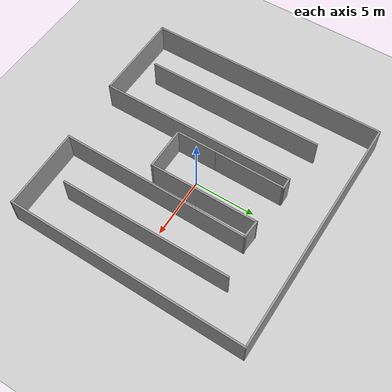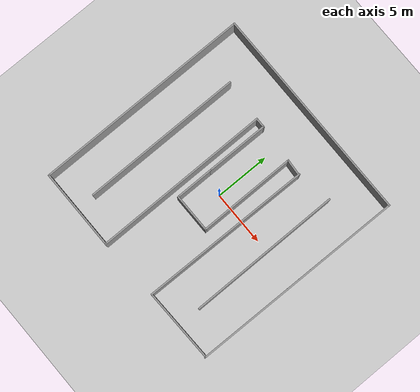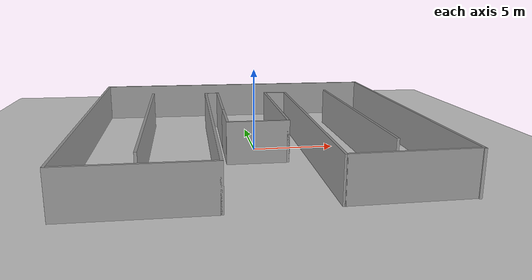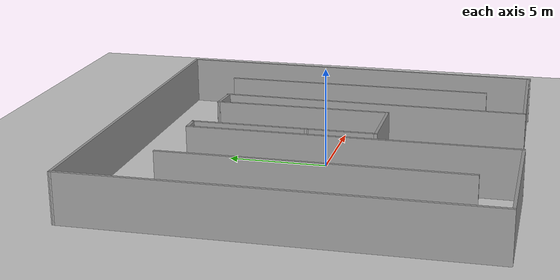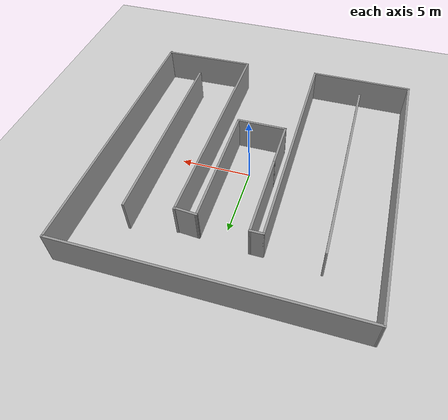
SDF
<sdf version="1.7">
 <world name="default">
  <light name="sun" type="directional">
   <pose>0 0 10 0 -0 0</pose>
   <diffuse>0.8 0.8 0.8 1</diffuse>
   <specular>0.2 0.2 0.2 1</specular>
   <attenuation>
    <range>1000</range>
    <constant>0.9</constant>
    <linear>0.01</linear>
    <quadratic>0.001</quadratic>
   </attenuation>
   <direction>-0.5 0.1 -0.9</direction>
   <spot><inner_angle>0</inner_angle><outer_angle>0</outer_angle><falloff>0</falloff></spot>
  </light>
  <model name="ground_plane">
   <static>1</static>
   <link name="link">
    <collision name="collision">
     <geometry><plane><normal>0 0 1</normal><size>100 100</size></plane></geometry>
     <surface><friction><ode><mu>100</mu><mu2>50</mu2></ode></friction></surface>
    </collision>
    <visual name="visual">
     <cast_shadows>0</cast_shadows>
     <geometry><plane><normal>0 0 1</normal><size>100 100</size></plane></geometry>
     <material>
      <script><uri>file://media/materials/scripts/gazebo.material</uri><name>Gazebo/Grey</name></script>
     </material>
    </visual>
   </link>
  </model>
  <gravity>0 0 -9.8</gravity>
  <magnetic_field>6e-06 2.3e-05 -4.2e-05</magnetic_field>
  <atmosphere type="adiabatic"/>
  <physics type="ode">
   <max_step_size>0.001</max_step_size>
   <real_time_factor>1</real_time_factor>
   <real_time_update_rate>1000</real_time_update_rate>
  </physics>
  <scene><ambient>0.4 0.4 0.4 1</ambient><background>0.7 0.7 0.7 1</background><shadows>1</shadows></scene>
  <audio><device>default</device></audio>
  <spherical_coordinates>
   <surface_model>EARTH_WGS84</surface_model>
   <latitude_deg>0</latitude_deg>
   <longitude_deg>0</longitude_deg>
   <heading_deg>180</heading_deg>
  </spherical_coordinates>
  <model name="labirinto">
   <pose>-0.150569 0.093899 0 0 -0 0</pose>
   <link name="Wall_1">
    <collision name="Wall_1_Collision">
     <geometry><box><size>3.5 0.15 2.5</size></box></geometry>
     <pose>0 0 1.25 0 -0 0</pose>
    </collision>
    <visual name="Wall_1_Visual">
     <pose>0 0 1.25 0 -0 0</pose>
     <geometry><box><size>3.5 0.15 2.5</size></box></geometry>
     <material>
      <script><uri>file://media/materials/scripts/gazebo.material</uri><name>Gazebo/Grey</name></script>
      <ambient>1 1 1 1</ambient>
     </material>
     <meta><layer>0</layer></meta>
    </visual>
    <pose>-1.71705 -1.19661 0 0 -0 -1.5708</pose>
   </link>
   <link name="Wall_10">
    <collision name="Wall_10_Collision">
     <geometry><box><size>7.5 0.15 2.5</size></box></geometry>
     <pose>0 0 1.25 0 -0 0</pose>
    </collision>
    <visual name="Wall_10_Visual">
     <pose>0 0 1.25 0 -0 0</pose>
     <geometry><box><size>7.5 0.15 2.5</size></box></geometry>
     <material>
      <script><uri>file://media/materials/scripts/gazebo.material</uri><name>Gazebo/Grey</name></script>
      <ambient>1 1 1 1</ambient>
     </material>
     <meta><layer>0</layer></meta>
    </visual>
    <pose>-6.21753 -9.92512 0 0 -0 0</pose>
   </link>
   <link name="Wall_11">
    <collision name="Wall_11_Collision">
     <geometry><box><size>16.25 0.15 2.5</size></box></geometry>
     <pose>0 0 1.25 0 -0 0</pose>
    </collision>
    <visual name="Wall_11_Visual">
     <pose>0 0 1.25 0 -0 0</pose>
     <geometry><box><size>16.25 0.15 2.5</size></box></geometry>
     <material>
      <script><uri>file://media/materials/scripts/gazebo.material</uri><name>Gazebo/Grey</name></script>
      <ambient>1 1 1 1</ambient>
     </material>
     <meta><layer>0</layer></meta>
    </visual>
    <pose>-2.54254 -1.87512 0 0 -0 1.5708</pose>
   </link>
   <link name="Wall_12">
    <collision name="Wall_12_Collision">
     <geometry><box><size>1 0.15 2.5</size></box></geometry>
     <pose>0 0 1.25 0 -0 0</pose>
    </collision>
    <visual name="Wall_12_Visual">
     <pose>0 0 1.25 0 -0 0</pose>
     <geometry><box><size>1 0.15 2.5</size></box></geometry>
     <material>
      <script><uri>file://media/materials/scripts/gazebo.material</uri><name>Gazebo/Grey</name></script>
      <ambient>1 1 1 1</ambient>
     </material>
     <meta><layer>0</layer></meta>
    </visual>
    <pose>-2.11754 6.17488 0 0 -0 0</pose>
   </link>
   <link name="Wall_13">
    <collision name="Wall_13_Collision">
     <geometry><box><size>5.90005 0.15 2.5</size></box></geometry>
     <pose>0 0 1.25 0 -0 0</pose>
    </collision>
    <visual name="Wall_13_Visual">
     <pose>0 0 1.25 0 -0 0</pose>
     <geometry><box><size>5.90005 0.15 2.5</size></box></geometry>
     <material>
      <script><uri>file://media/materials/scripts/gazebo.material</uri><name>Gazebo/Grey</name></script>
      <ambient>1 1 1 1</ambient>
     </material>
     <meta><layer>0</layer></meta>
    </visual>
    <pose>-1.70479 3.29988 0 0 -0 -1.57506</pose>
   </link>
   <link name="Wall_15">
    <collision name="Wall_15_Collision">
     <geometry><box><size>14 0.15 2.5</size></box></geometry>
     <pose>0 0 1.25 0 -0 0</pose>
    </collision>
    <visual name="Wall_15_Visual">
     <pose>0 0 1.25 0 -0 0</pose>
     <geometry><box><size>14 0.15 2.5</size></box></geometry>
     <material>
      <script><uri>file://media/materials/scripts/gazebo.material</uri><name>Gazebo/Grey</name></script>
      <ambient>1 1 1 1</ambient>
     </material>
     <meta><layer>0</layer></meta>
    </visual>
    <pose>6.3704 -0.502108 0 0 -0 1.5708</pose>
   </link>
   <link name="Wall_17">
    <collision name="Wall_17_Collision">
     <geometry><box><size>14.75 0.15 2.5</size></box></geometry>
     <pose>0 0 1.25 0 -0 0</pose>
    </collision>
    <visual name="Wall_17_Visual">
     <pose>0 0 1.25 0 -0 0</pose>
     <geometry><box><size>14.75 0.15 2.5</size></box></geometry>
     <material>
      <script><uri>file://media/materials/scripts/gazebo.material</uri><name>Gazebo/Grey</name></script>
      <ambient>1 1 1 1</ambient>
     </material>
     <meta><layer>0</layer></meta>
    </visual>
    <pose>-6.32342 -0.859443 0 0 -0 1.5708</pose>
   </link>
   <link name="Wall_2">
    <collision name="Wall_2_Collision">
     <geometry><box><size>3.62493 0.15 2.5</size></box></geometry>
     <pose>0 0 1.25 0 -0 0</pose>
    </collision>
    <visual name="Wall_2_Visual">
     <pose>0 0 1.25 0 -0 0</pose>
     <geometry><box><size>3.62493 0.15 2.5</size></box></geometry>
     <material>
      <script><uri>file://media/materials/scripts/gazebo.material</uri><name>Gazebo/Grey</name></script>
      <ambient>1 1 1 1</ambient>
     </material>
     <meta><layer>0</layer></meta>
    </visual>
    <pose>0.020206 -2.92512 0 0 -0 0</pose>
   </link>
   <link name="Wall_3">
    <collision name="Wall_3_Collision">
     <geometry><box><size>9 0.15 2.5</size></box></geometry>
     <pose>0 0 1.25 0 -0 0</pose>
    </collision>
    <visual name="Wall_3_Visual">
     <pose>0 0 1.25 0 -0 0</pose>
     <geometry><box><size>9 0.15 2.5</size></box></geometry>
     <material>
      <script><uri>file://media/materials/scripts/gazebo.material</uri><name>Gazebo/Grey</name></script>
      <ambient>1 1 1 1</ambient>
     </material>
     <meta><layer>0</layer></meta>
    </visual>
    <pose>1.75747 1.49988 0 0 -0 1.5708</pose>
   </link>
   <link name="Wall_4">
    <collision name="Wall_4_Collision">
     <geometry><box><size>1.61189 0.15 2.5</size></box></geometry>
     <pose>0 0 1.25 0 -0 0</pose>
    </collision>
    <visual name="Wall_4_Visual">
     <pose>0 0 1.25 0 -0 0</pose>
     <geometry><box><size>1.61189 0.15 2.5</size></box></geometry>
     <material>
      <script><uri>file://media/materials/scripts/gazebo.material</uri><name>Gazebo/Grey</name></script>
      <ambient>1 1 1 1</ambient>
     </material>
     <meta><layer>0</layer></meta>
    </visual>
    <pose>2.48645 5.87138 0 0 -0 -0.073262</pose>
   </link>
   <link name="Wall_5">
    <collision name="Wall_5_Collision">
     <geometry><box><size>15.6775 0.15 2.5</size></box></geometry>
     <pose>0 0 1.25 0 -0 0</pose>
    </collision>
    <visual name="Wall_5_Visual">
     <pose>0 0 1.25 0 -0 0</pose>
     <geometry><box><size>15.6775 0.15 2.5</size></box></geometry>
     <material>
      <script><uri>file://media/materials/scripts/gazebo.material</uri><name>Gazebo/Grey</name></script>
      <ambient>1 1 1 1</ambient>
     </material>
     <meta><layer>0</layer></meta>
    </visual>
    <pose>3.12186 -1.89183 0 0 -0 -1.58285</pose>
   </link>
   <link name="Wall_6">
    <collision name="Wall_6_Collision">
     <geometry><box><size>6.73451 0.15 2.5</size></box></geometry>
     <pose>0 0 1.25 0 -0 0</pose>
    </collision>
    <visual name="Wall_6_Visual">
     <pose>0 0 1.25 0 -0 0</pose>
     <geometry><box><size>6.73451 0.15 2.5</size></box></geometry>
     <material>
      <script><uri>file://media/materials/scripts/gazebo.material</uri><name>Gazebo/Grey</name></script>
      <ambient>1 1 1 1</ambient>
     </material>
     <meta><layer>0</layer></meta>
    </visual>
    <pose>6.41338 -9.58551 0 0 -0 0.02112</pose>
   </link>
   <link name="Wall_7">
    <collision name="Wall_7_Collision">
     <geometry><box><size>19.5302 0.15 2.5</size></box></geometry>
     <pose>0 0 1.25 0 -0 0</pose>
    </collision>
    <visual name="Wall_7_Visual">
     <pose>0 0 1.25 0 -0 0</pose>
     <geometry><box><size>19.5302 0.15 2.5</size></box></geometry>
     <material>
      <script><uri>file://media/materials/scripts/gazebo.material</uri><name>Gazebo/Grey</name></script>
      <ambient>1 1 1 1</ambient>
     </material>
     <meta><layer>0</layer></meta>
    </visual>
    <pose>9.79847 0.112159 0 0 -0 1.56114</pose>
   </link>
   <link name="Wall_8">
    <collision name="Wall_8_Collision">
     <geometry><box><size>19.9347 0.15 2.5</size></box></geometry>
     <pose>0 0 1.25 0 -0 0</pose>
    </collision>
    <visual name="Wall_8_Visual">
     <pose>0 0 1.25 0 -0 0</pose>
     <geometry><box><size>19.9347 0.15 2.5</size></box></geometry>
     <material>
      <script><uri>file://media/materials/scripts/gazebo.material</uri><name>Gazebo/Grey</name></script>
      <ambient>1 1 1 1</ambient>
     </material>
     <meta><layer>0</layer></meta>
    </visual>
    <pose>-0.000244 9.89412 0 0 -0 3.13848</pose>
   </link>
   <link name="Wall_9">
    <collision name="Wall_9_Collision">
     <geometry><box><size>20 0.15 2.5</size></box></geometry>
     <pose>0 0 1.25 0 -0 0</pose>
    </collision>
    <visual name="Wall_9_Visual">
     <pose>0 0 1.25 0 -0 0</pose>
     <geometry><box><size>20 0.15 2.5</size></box></geometry>
     <material>
      <script><uri>file://media/materials/scripts/gazebo.material</uri><name>Gazebo/Grey</name></script>
      <ambient>1 1 1 1</ambient>
     </material>
     <meta><layer>0</layer></meta>
    </visual>
    <pose>-9.89254 -0.000116 0 0 -0 -1.5708</pose>
   </link>
   <static>1</static>
  </model>
 </world>
</sdf>
